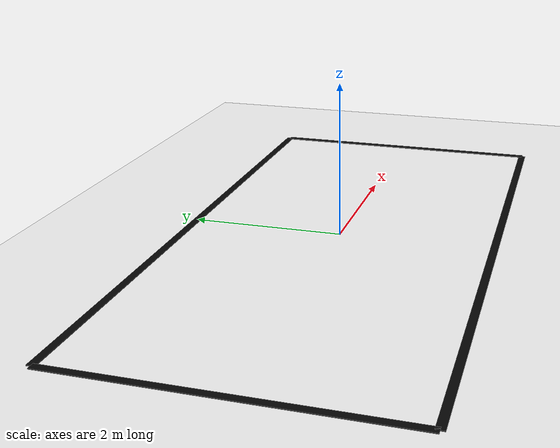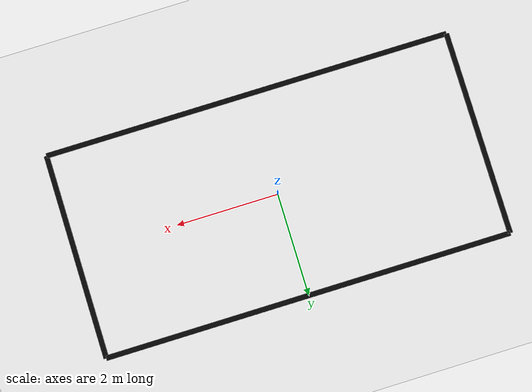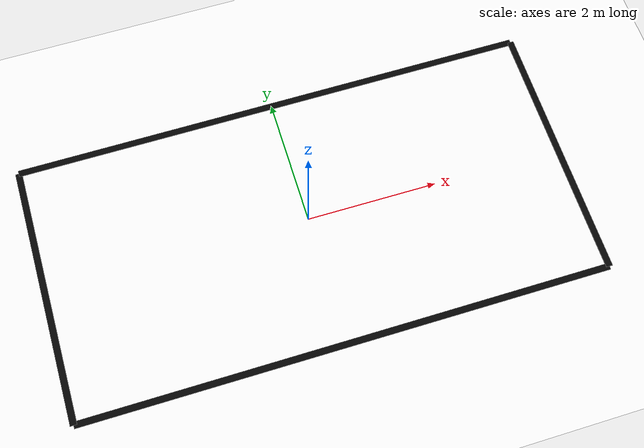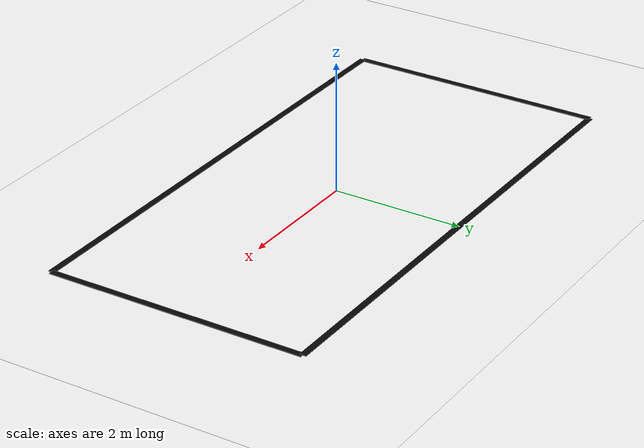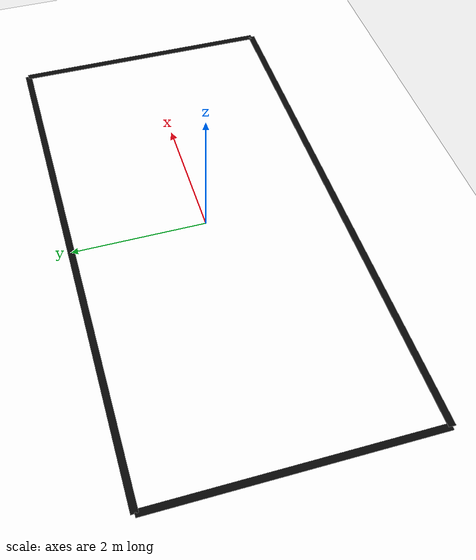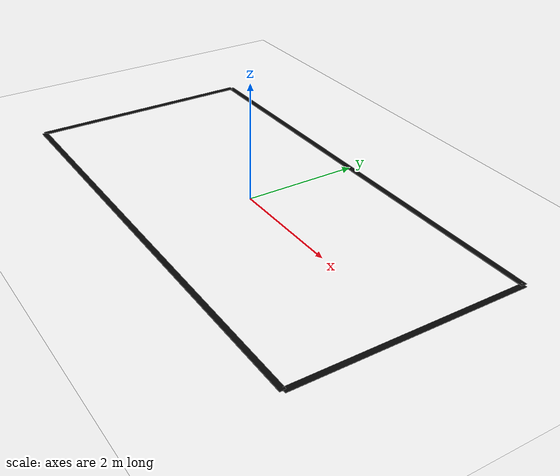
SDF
<?xml version="1.0" ?>
<sdf version="1.9">
  <world name="line_track">

    <scene>
      <ambient>0.6 0.6 0.6 1</ambient>
      <background>0.9 0.95 1 1</background>
    </scene>

    <light name="sun" type="directional">
      <pose>0 0 10 0 0 0</pose>
      <direction>-0.3 0.1 -1</direction>
      <cast_shadows>true</cast_shadows>
    </light>

    <model name="ground">
      <static>true</static>
      <link name="link">
        <collision name="col">
          <geometry><plane><normal>0 0 1</normal><size>50 50</size></plane></geometry>
        </collision>
        <visual name="vis">
          <geometry><plane><normal>0 0 1</normal><size>50 50</size></plane></geometry>
          <material>
            <ambient>0.95 0.95 0.95 1</ambient>
            <diffuse>0.95 0.95 0.95 1</diffuse>
          </material>
        </visual>
      </link>
    </model>

    <!-- black rectangular track -->
    <model name="line_track_rect">
      <static>true</static>
      <link name="link">

        <visual name="s1">
          <pose>0  2 0.005 0 0 0</pose>
          <geometry><box><size>8 0.10 0.01</size></box></geometry>
          <material><diffuse>0.02 0.02 0.02 1</diffuse></material>
        </visual>

        <visual name="s2">
          <pose>0 -2 0.005 0 0 0</pose>
          <geometry><box><size>8 0.10 0.01</size></box></geometry>
          <material><diffuse>0.02 0.02 0.02 1</diffuse></material>
        </visual>

        <visual name="s3">
          <pose>4 0 0.005 0 0 1.5708</pose>
          <geometry><box><size>4 0.10 0.01</size></box></geometry>
          <material><diffuse>0.02 0.02 0.02 1</diffuse></material>
        </visual>

        <visual name="s4">
          <pose>-4 0 0.005 0 0 1.5708</pose>
          <geometry><box><size>4 0.10 0.01</size></box></geometry>
          <material><diffuse>0.02 0.02 0.02 1</diffuse></material>
        </visual>

      </link>
    </model>

  </world>
</sdf>
